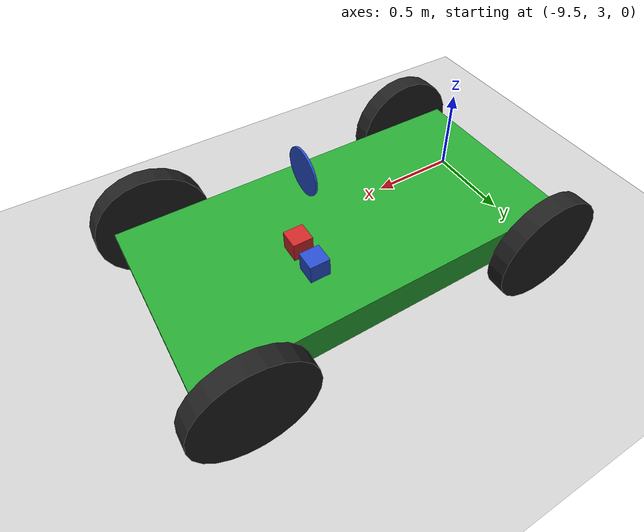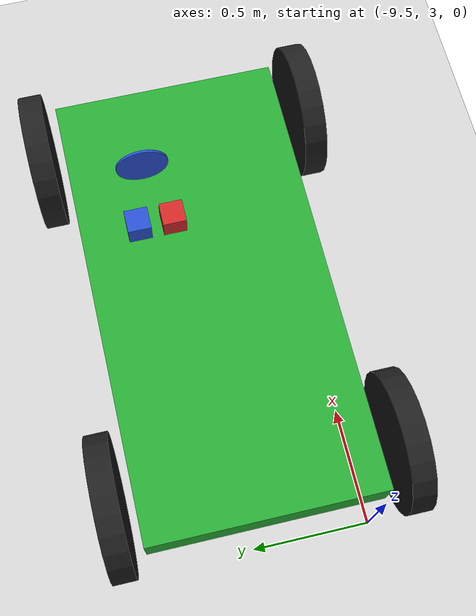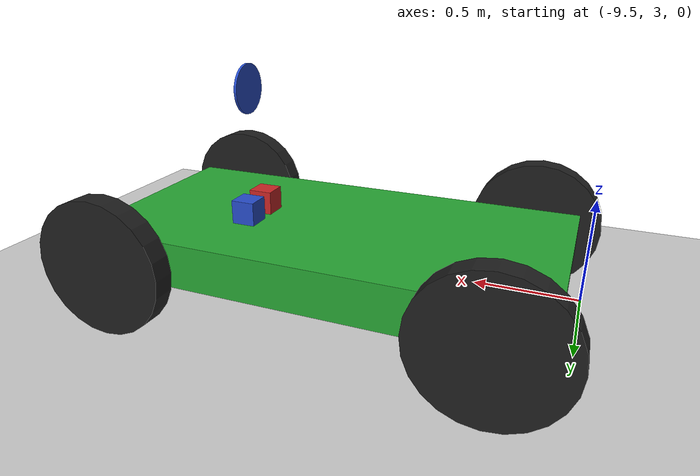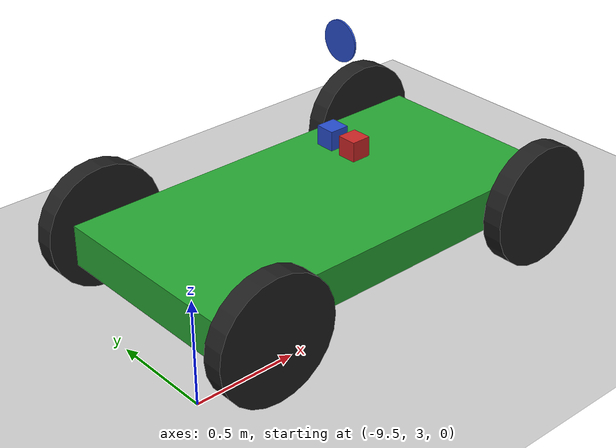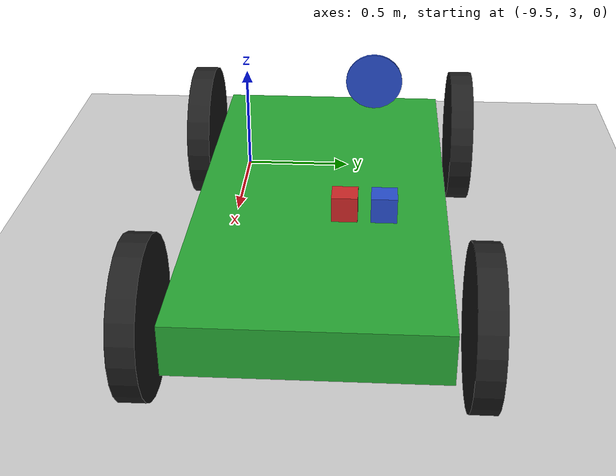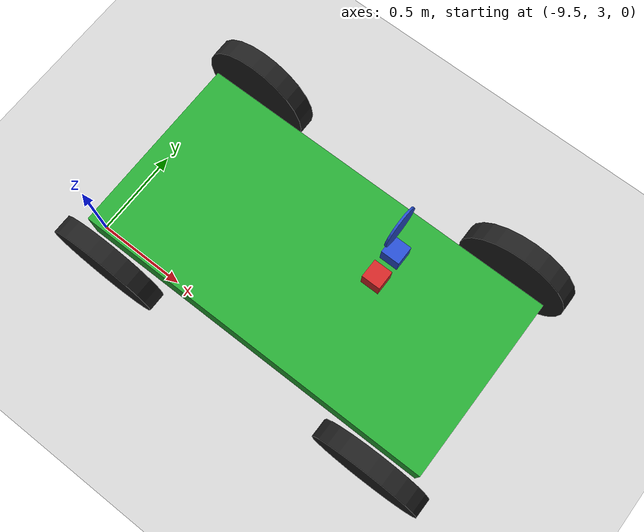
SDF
<sdf version="1.6">
 <world name="myworld">
  <model name="ground_plane">
   <static>1</static>
   <link name="link">
    <collision name="collision">
     <geometry><plane><normal>0 0 1</normal><size>100 100</size></plane></geometry>
     <surface><friction><ode><mu>100</mu><mu2>50</mu2></ode></friction></surface>
    </collision>
    <visual name="visual">
     <cast_shadows>0</cast_shadows>
     <geometry><plane><normal>0 0 1</normal><size>100 100</size></plane></geometry>
     <material>
      <script><uri>file://media/materials/scripts/gazebo.material</uri><name>Gazebo/Grey</name></script>
     </material>
    </visual>
   </link>
  </model>
  <model name="car">
   <link name="chassis">
    <pose>0 0 0.3 0 -0 0</pose>
    <collision name="collision"><geometry><box><size>2 1 0.2</size></box></geometry></collision>
    <visual name="visual">
     <geometry><box><size>2 1 0.2</size></box></geometry>
     <material>
      <script><uri>file://media/materials/scripts/gazebo.material</uri><name>Gazebo/Green</name></script>
     </material>
    </visual>
    <inertial>
     <inertia><ixx>1</ixx><ixy>0</ixy><ixz>0</ixz><iyy>1</iyy><iyz>0</iyz><izz>1</izz></inertia>
     <mass>1</mass>
    </inertial>
   </link>
   <link name="front_left_wheel">
    <pose>0.8 0.6 0.3 -0 1.5707 1.5707</pose>
    <collision name="collision">
     <geometry><cylinder><radius>0.3</radius><length>0.1</length></cylinder></geometry>
    </collision>
    <visual name="visual">
     <geometry><cylinder><radius>0.3</radius><length>0.1</length></cylinder></geometry>
     <material>
      <script><uri>file://media/materials/scripts/gazebo.material</uri><name>Gazebo/Black</name></script>
     </material>
    </visual>
    <inertial>
     <inertia><ixx>1</ixx><ixy>0</ixy><ixz>0</ixz><iyy>1</iyy><iyz>0</iyz><izz>1</izz></inertia>
     <mass>1</mass>
    </inertial>
   </link>
   <link name="front_right_wheel">
    <pose>0.8 -0.6 0.3 -0 1.5707 1.5707</pose>
    <collision name="collision">
     <geometry><cylinder><radius>0.3</radius><length>0.1</length></cylinder></geometry>
    </collision>
    <visual name="visual">
     <geometry><cylinder><radius>0.3</radius><length>0.1</length></cylinder></geometry>
     <material>
      <script><uri>file://media/materials/scripts/gazebo.material</uri><name>Gazebo/Black</name></script>
     </material>
    </visual>
    <inertial>
     <inertia><ixx>1</ixx><ixy>0</ixy><ixz>0</ixz><iyy>1</iyy><iyz>0</iyz><izz>1</izz></inertia>
     <mass>1</mass>
    </inertial>
   </link>
   <link name="back_right_wheel">
    <pose>-0.8 -0.6 0.3 -0 1.5707 1.5707</pose>
    <collision name="collision">
     <geometry><cylinder><radius>0.3</radius><length>0.1</length></cylinder></geometry>
    </collision>
    <visual name="visual">
     <geometry><cylinder><radius>0.3</radius><length>0.1</length></cylinder></geometry>
     <material>
      <script><uri>file://media/materials/scripts/gazebo.material</uri><name>Gazebo/Black</name></script>
     </material>
    </visual>
    <inertial>
     <inertia><ixx>1</ixx><ixy>0</ixy><ixz>0</ixz><iyy>1</iyy><iyz>0</iyz><izz>1</izz></inertia>
     <mass>1</mass>
    </inertial>
   </link>
   <link name="back_left_wheel">
    <pose>-0.8 0.6 0.3 -0 1.5707 1.5707</pose>
    <collision name="collision">
     <geometry><cylinder><radius>0.3</radius><length>0.1</length></cylinder></geometry>
    </collision>
    <visual name="visual">
     <geometry><cylinder><radius>0.3</radius><length>0.1</length></cylinder></geometry>
     <material>
      <script><uri>file://media/materials/scripts/gazebo.material</uri><name>Gazebo/Black</name></script>
     </material>
    </visual>
    <inertial>
     <inertia><ixx>1</ixx><ixy>0</ixy><ixz>0</ixz><iyy>1</iyy><iyz>0</iyz><izz>1</izz></inertia>
     <mass>1</mass>
    </inertial>
   </link>
   <link name="gas_pedal">
    <pose>0.3 0.1 0.5 0 -0 0</pose>
    <collision name="collision"><geometry><box><size>0.1 0.1 0.1</size></box></geometry></collision>
    <visual name="visual">
     <geometry><box><size>0.1 0.1 0.1</size></box></geometry>
     <material>
      <script><uri>file://media/materials/scripts/gazebo.material</uri><name>Gazebo/Red</name></script>
     </material>
    </visual>
    <inertial>
     <inertia><ixx>1</ixx><ixy>0</ixy><ixz>0</ixz><iyy>1</iyy><iyz>0</iyz><izz>1</izz></inertia>
     <mass>1</mass>
    </inertial>
   </link>
   <link name="brake_pedal">
    <pose>0.3 0.25 0.5 0 -0 0</pose>
    <collision name="collision"><geometry><box><size>0.1 0.1 0.1</size></box></geometry></collision>
    <visual name="visual">
     <geometry><box><size>0.1 0.1 0.1</size></box></geometry>
     <material>
      <script><uri>file://media/materials/scripts/gazebo.material</uri><name>Gazebo/Blue</name></script>
     </material>
    </visual>
    <inertial>
     <inertia><ixx>1</ixx><ixy>0</ixy><ixz>0</ixz><iyy>1</iyy><iyz>0</iyz><izz>1</izz></inertia>
     <mass>1</mass>
    </inertial>
   </link>
   <link name="steering_wheel">
    <pose>0.3 0.2 1 0 1.5707 0</pose>
    <collision name="collision">
     <geometry><cylinder><radius>0.1</radius><length>0.01</length></cylinder></geometry>
    </collision>
    <visual name="visual">
     <geometry><cylinder><radius>0.1</radius><length>0.01</length></cylinder></geometry>
     <material>
      <script><uri>file://media/materials/scripts/gazebo.material</uri><name>Gazebo/Blue</name></script>
     </material>
    </visual>
    <inertial>
     <inertia><ixx>1</ixx><ixy>0</ixy><ixz>0</ixz><iyy>1</iyy><iyz>0</iyz><izz>1</izz></inertia>
     <mass>1</mass>
    </inertial>
   </link>
   <joint name="gas_joint" type="prismatic">
    <parent>chassis</parent>
    <child>gas_pedal</child>
    <axis>
     <xyz>1 0 0</xyz>
     <limit><lower>0</lower><upper>0.2</upper></limit>
     <use_parent_model_frame>1</use_parent_model_frame>
     <dynamics><spring_reference>0</spring_reference><spring_stiffness>0</spring_stiffness></dynamics>
    </axis>
   </joint>
   <joint name="brake_joint" type="prismatic">
    <parent>chassis</parent>
    <child>brake_pedal</child>
    <axis>
     <xyz>1 0 0</xyz>
     <limit><lower>0</lower><upper>0.2</upper></limit>
     <use_parent_model_frame>1</use_parent_model_frame>
     <dynamics><spring_reference>0</spring_reference><spring_stiffness>0</spring_stiffness></dynamics>
    </axis>
   </joint>
   <joint name="steering_joint" type="revolute">
    <parent>chassis</parent>
    <child>steering_wheel</child>
    <axis>
     <xyz>1 0 0</xyz>
     <limit><lower>-7.853</lower><upper>7.853</upper></limit>
     <use_parent_model_frame>1</use_parent_model_frame>
     <dynamics><spring_reference>0</spring_reference><spring_stiffness>0</spring_stiffness></dynamics>
    </axis>
   </joint>
   <joint name="front_left_joint" type="revolute2">
    <parent>chassis</parent>
    <child>front_left_wheel</child>
    <axis>
     <xyz>0 0 1</xyz>
     <limit><lower>8.67778e-06</lower><upper>8.67778e-06</upper></limit>
     <use_parent_model_frame>1</use_parent_model_frame>
     <dynamics><spring_reference>0</spring_reference><spring_stiffness>0</spring_stiffness></dynamics>
    </axis>
    <axis2>
     <xyz>0 1 0</xyz>
     <use_parent_model_frame>1</use_parent_model_frame>
     <dynamics><spring_reference>0</spring_reference><spring_stiffness>0</spring_stiffness></dynamics>
    </axis2>
    <physics><ode><limit><cfm>0</cfm><erp>0.9</erp></limit></ode></physics>
   </joint>
   <joint name="front_right_joint" type="revolute2">
    <parent>chassis</parent>
    <child>front_right_wheel</child>
    <axis>
     <xyz>0 0 1</xyz>
     <limit><lower>8.67778e-06</lower><upper>8.67778e-06</upper></limit>
     <use_parent_model_frame>1</use_parent_model_frame>
     <dynamics><spring_reference>0</spring_reference><spring_stiffness>0</spring_stiffness></dynamics>
    </axis>
    <axis2>
     <xyz>0 1 0</xyz>
     <use_parent_model_frame>1</use_parent_model_frame>
     <dynamics><spring_reference>0</spring_reference><spring_stiffness>0</spring_stiffness></dynamics>
    </axis2>
    <physics><ode><limit><cfm>0</cfm><erp>0.9</erp></limit></ode></physics>
   </joint>
   <joint name="back_right_joint" type="revolute2">
    <parent>chassis</parent>
    <child>back_right_wheel</child>
    <axis>
     <xyz>0 0 1</xyz>
     <limit><lower>0</lower><upper>0</upper></limit>
     <use_parent_model_frame>1</use_parent_model_frame>
     <dynamics><spring_reference>0</spring_reference><spring_stiffness>0</spring_stiffness></dynamics>
    </axis>
    <axis2>
     <xyz>0 1 0</xyz>
     <use_parent_model_frame>1</use_parent_model_frame>
     <dynamics><spring_reference>0</spring_reference><spring_stiffness>0</spring_stiffness></dynamics>
    </axis2>
    <physics><ode><limit><cfm>0</cfm><erp>0.9</erp></limit></ode></physics>
   </joint>
   <joint name="back_left_joint" type="revolute2">
    <parent>chassis</parent>
    <child>back_left_wheel</child>
    <axis>
     <xyz>0 0 1</xyz>
     <limit><lower>0</lower><upper>0</upper></limit>
     <use_parent_model_frame>1</use_parent_model_frame>
     <dynamics><spring_reference>0</spring_reference><spring_stiffness>0</spring_stiffness></dynamics>
    </axis>
    <axis2>
     <xyz>0 1 0</xyz>
     <use_parent_model_frame>1</use_parent_model_frame>
     <dynamics><spring_reference>0</spring_reference><spring_stiffness>0</spring_stiffness></dynamics>
    </axis2>
    <physics><ode><limit><cfm>0</cfm><erp>0.9</erp></limit></ode></physics>
   </joint>
   <plugin name="vehicle" filename="libVehiclePlugin.so">
    <front_left>front_left_joint</front_left>
    <front_right>front_right_joint</front_right>
    <back_left>back_left_joint</back_left>
    <back_right>back_right_joint</back_right>
    <gas>gas_joint</gas>
    <brake>brake_joint</brake>
    <steering>steering_joint</steering>
    <front_power>10</front_power>
    <rear_power>10</rear_power>
    <tire_angle_range>0.5</tire_angle_range>
    <max_speed>10</max_speed>
    <aero_load>0.1</aero_load>
   </plugin>
   <pose>-8.4415 3.43528 -0.002616 -0.000273 0.000907 0.00025</pose>
  </model>
 </world>
</sdf>
